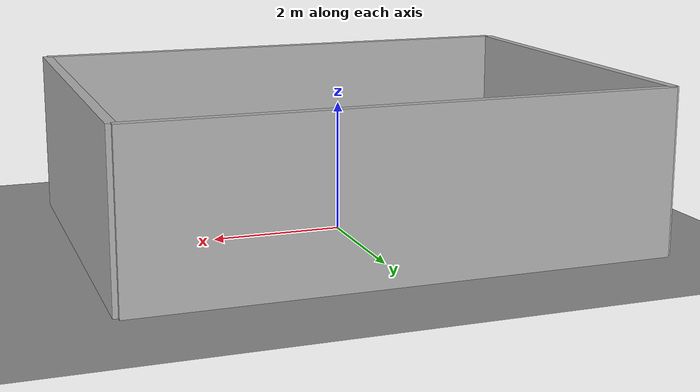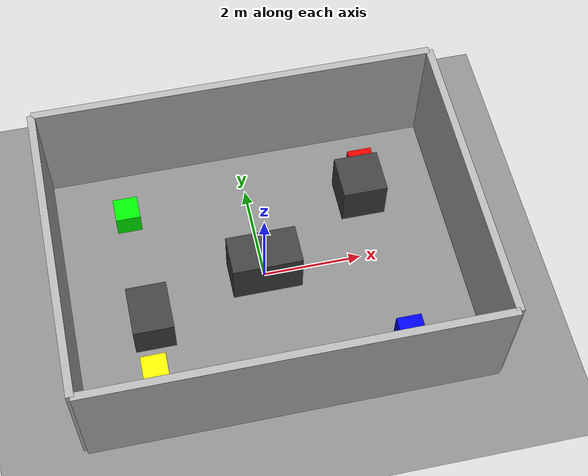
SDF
<?xml version="1.0" ?>
<sdf version="1.10">
  <world name="embodied_ai_boxes">

    <!-- Physics                                                       -->

    <physics name="default_physics" type="ode">
      <max_step_size>0.001</max_step_size>
      <real_time_factor>1.0</real_time_factor>
      <real_time_update_rate>1000</real_time_update_rate>
    </physics>

    <!-- Lighting                                                      -->

    <light name="sun" type="directional">
      <cast_shadows>true</cast_shadows>
      <pose>0 0 8 0 0 0</pose>
      <diffuse>0.8 0.8 0.8 1</diffuse>
      <specular>0.2 0.2 0.2 1</specular>
      <attenuation>
        <range>100</range>
        <constant>0.9</constant>
        <linear>0.01</linear>
        <quadratic>0.001</quadratic>
      </attenuation>
      <direction>-0.3 -0.3 -1.0</direction>
    </light>

    <light name="indoor_light" type="point">
      <pose>0 0 5 0 0 0</pose>
      <cast_shadows>true</cast_shadows>
      <diffuse>1.0 1.0 1.0 1</diffuse>
      <specular>0.3 0.3 0.3 1</specular>
      <attenuation>
        <range>15</range>
        <constant>0.5</constant>
        <linear>0.01</linear>
        <quadratic>0.001</quadratic>
      </attenuation>
    </light>

    <!-- Ground                                                        -->

    <model name="ground">
      <static>true</static>

      <link name="ground_link">

        <collision name="ground_collision">
          <geometry>
            <plane>
              <normal>0 0 1</normal>
              <size>20 20</size>
            </plane>
          </geometry>
        </collision>

        <visual name="ground_visual">
          <geometry>
            <plane>
              <normal>0 0 1</normal>
              <size>20 20</size>
            </plane>
          </geometry>

          <material>
            <ambient>0.55 0.55 0.55 1</ambient>
            <diffuse>0.55 0.55 0.55 1</diffuse>
            <specular>0.1 0.1 0.1 1</specular>
          </material>
        </visual>

      </link>
    </model>

    <!-- Helper macro-like repeated wall models                       -->

    <!-- North wall -->
    <model name="wall_north">
      <static>true</static>
      <pose>0 3.0 1.25 0 0 0</pose>

      <link name="link">

        <collision name="collision">
          <geometry>
            <box>
              <size>8.0 0.15 2.5</size>
            </box>
          </geometry>
        </collision>

        <visual name="visual">
          <geometry>
            <box>
              <size>8.0 0.15 2.5</size>
            </box>
          </geometry>
            <material>
              <ambient>0.7 0.7 0.7 1</ambient>
              <diffuse>0.7 0.7 0.7 1</diffuse>
            </material>
        </visual>

      </link>
    </model>

    <!-- South wall -->
    <model name="wall_south">
      <static>true</static>
      <pose>0 -3.0 1.25 0 0 0</pose>

      <link name="link">

        <collision name="collision">
          <geometry>
            <box>
              <size>8.0 0.15 2.5</size>
            </box>
          </geometry>
        </collision>

        <visual name="visual">
          <geometry>
            <box>
              <size>8.0 0.15 2.5</size>
            </box>
          </geometry>
          <material>
            <ambient>0.7 0.7 0.7 1</ambient>
            <diffuse>0.7 0.7 0.7 1</diffuse>
          </material>
        </visual>

      </link>
    </model>

    <!-- East wall -->
    <model name="wall_east">
      <static>true</static>
      <pose>4.0 0 1.25 0 0 0</pose>

      <link name="link">

        <collision name="collision">
          <geometry>
            <box>
              <size>0.15 6.0 2.5</size>
            </box>
          </geometry>
        </collision>

        <visual name="visual">
          <geometry>
            <box>
              <size>0.15 6.0 2.5</size>
            </box>
          </geometry>
          <material>
            <ambient>0.7 0.7 0.7 1</ambient>
            <diffuse>0.7 0.7 0.7 1</diffuse>
          </material>
        </visual>

      </link>
    </model>

    <!-- West wall -->
    <model name="wall_west">
      <static>true</static>
      <pose>-4.0 0 1.25 0 0 0</pose>

      <link name="link">

        <collision name="collision">
          <geometry>
            <box>
              <size>0.15 6.0 2.5</size>
            </box>
          </geometry>
        </collision>

        <visual name="visual">
          <geometry>
            <box>
              <size>0.15 6.0 2.5</size>
            </box>
          </geometry>
          <material>
            <ambient>0.7 0.7 0.7 1</ambient>
            <diffuse>0.7 0.7 0.7 1</diffuse>
          </material>
        </visual>

      </link>
    </model>

    <!-- Static obstacles                                              -->

    <model name="obstacle_center">
      <static>true</static>
      <pose>0.0 0.0 0.5 0 0 0</pose>

      <link name="link">

        <collision name="collision">
          <geometry>
            <box>
              <size>1.4 0.8 1.0</size>
            </box>
          </geometry>
        </collision>

        <visual name="visual">
          <geometry>
            <box>
              <size>1.4 0.8 1.0</size>
            </box>
          </geometry>
          <material>
            <ambient>0.25 0.25 0.25 1</ambient>
            <diffuse>0.25 0.25 0.25 1</diffuse>
          </material>
        </visual>

      </link>
    </model>

    <model name="obstacle_west">
      <static>true</static>
      <pose>-2.4 -0.7 0.4 0 0 0</pose>

      <link name="link">

        <collision name="collision">
          <geometry>
            <box>
              <size>0.8 1.0 0.8</size>
            </box>
          </geometry>
        </collision>

        <visual name="visual">
          <geometry>
            <box>
              <size>0.8 1.0 0.8</size>
            </box>
          </geometry>
          <material>
            <ambient>0.25 0.25 0.25 1</ambient>
            <diffuse>0.25 0.25 0.25 1</diffuse>
          </material>
        </visual>

      </link>
    </model>

    <model name="obstacle_east">
      <static>true</static>
      <pose>2.3 1.4 0.45 0 0 0</pose>

      <link name="link">

        <collision name="collision">
          <geometry>
            <box>
              <size>0.9 0.9 0.9</size>
            </box>
          </geometry>
        </collision>

        <visual name="visual">
          <geometry>
            <box>
              <size>0.9 0.9 0.9</size>
            </box>
          </geometry>
          <material>
            <ambient>0.25 0.25 0.25 1</ambient>
            <diffuse>0.25 0.25 0.25 1</diffuse>
          </material>
        </visual>

      </link>
    </model>

    <!-- RED BOX                                                        -->

    <model name="red_box">
      <static>true</static>
      <pose>2.5 2.0 0.25 0 0 0</pose>

      <link name="link">

        <collision name="collision">
          <geometry>
            <box>
              <size>0.5 0.5 0.5</size>
            </box>
          </geometry>
        </collision>

        <visual name="visual">
          <geometry>
            <box>
              <size>0.5 0.5 0.5</size>
            </box>
          </geometry>
          <material>
            <ambient>1.0 0.0 0.0 1</ambient>
            <diffuse>1.0 0.0 0.0 1</diffuse>
          </material>
        </visual>

      </link>
    </model>

    <!-- BLUE BOX                                                       -->

    <model name="blue_box">
      <static>true</static>
      <pose>2.5 -2.0 0.25 0 0 0</pose>

      <link name="link">

        <collision name="collision">
          <geometry>
            <box>
              <size>0.5 0.5 0.5</size>
            </box>
          </geometry>
        </collision>

        <visual name="visual">
          <geometry>
            <box>
              <size>0.5 0.5 0.5</size>
            </box>
          </geometry>
          <material>
            <ambient>0.0 0.0 1.0 1</ambient>
            <diffuse>0.0 0.0 1.0 1</diffuse>
          </material>
        </visual>

      </link>
    </model>

    <!-- GREEN BOX                                                      -->

    <model name="green_box">
      <static>true</static>
      <pose>-2.5 1.8 0.25 0 0 0</pose>

      <link name="link">

        <collision name="collision">
          <geometry>
            <box>
              <size>0.5 0.5 0.5</size>
            </box>
          </geometry>
        </collision>

        <visual name="visual">
          <geometry>
            <box>
              <size>0.5 0.5 0.5</size>
            </box>
          </geometry>
          <material>
            <ambient>0.0 1.0 0.0 1</ambient>
            <diffuse>0.0 1.0 0.0 1</diffuse>
          </material>
        </visual>

      </link>
    </model>

    <!-- YELLOW BOX                                                     -->

    <model name="yellow_box">
      <static>true</static>
      <pose>-2.5 -1.8 0.25 0 0 0</pose>

      <link name="link">

        <collision name="collision">
          <geometry>
            <box>
              <size>0.5 0.5 0.5</size>
            </box>
          </geometry>
        </collision>

        <visual name="visual">
          <geometry>
            <box>
              <size>0.5 0.5 0.5</size>
            </box>
          </geometry>
          <material>
            <ambient>1.0 1.0 0.0 1</ambient>
            <diffuse>1.0 1.0 0.0 1</diffuse>
          </material>
        </visual>

      </link>
    </model>

  </world>
</sdf>
